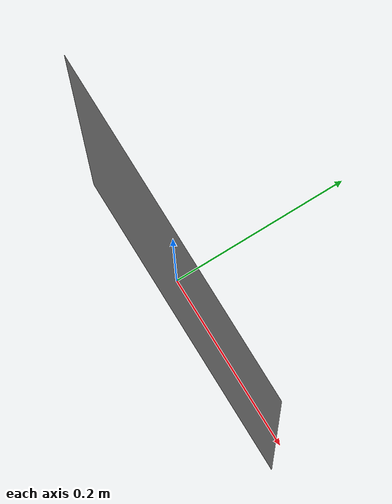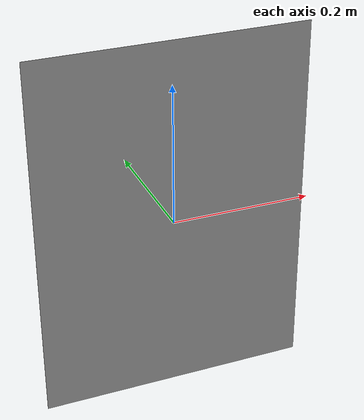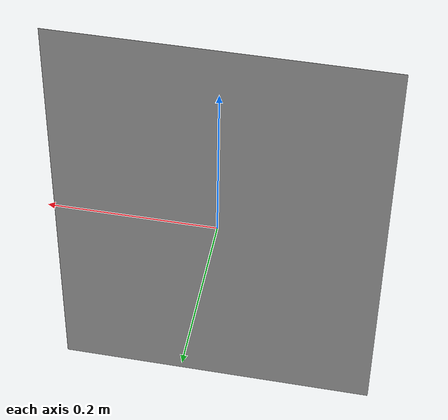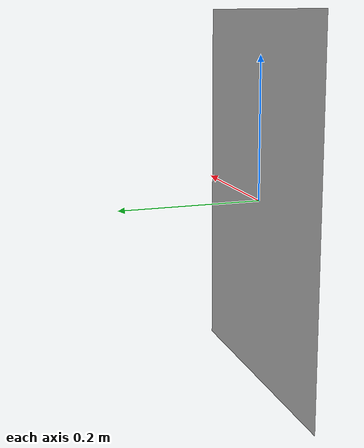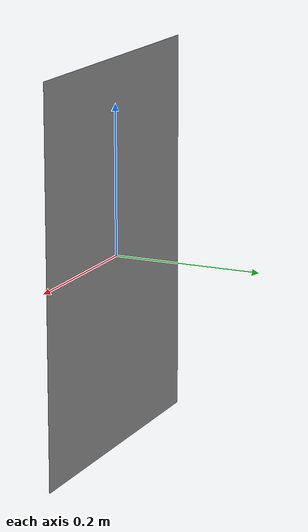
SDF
<?xml version="1.0" ?>
<sdf version="1.5">
  <model name="Bear1">
    <static>true</static>
    <link name="link">
      <pose>0 0 0 0 0 0</pose>
      <collision name="collision">
        <geometry>
          <box>
            <size>.3851 0.00002 .5211</size>
          </box>
        </geometry>
      </collision>
      <visual name="visual">
        <cast_shadows>false</cast_shadows>
        <geometry>
          <box>
            <size>.3851 0.00002 .5211</size>
          </box>
        </geometry>
        <material>
          <script>
            <uri>model://Bear1/materials/scripts</uri>
            <uri>model://Bear1/materials/textures</uri>
            <name>vrc/Bear1</name>
          </script>
        </material>
      </visual>
    </link>
  </model>
</sdf>
